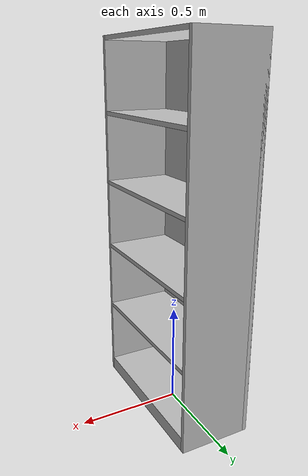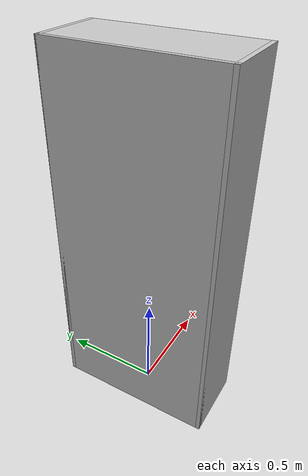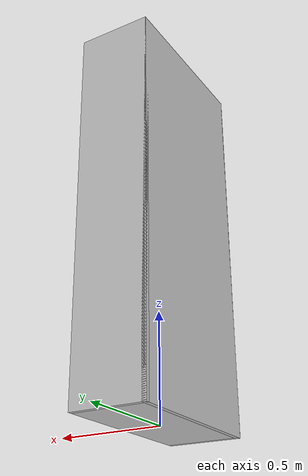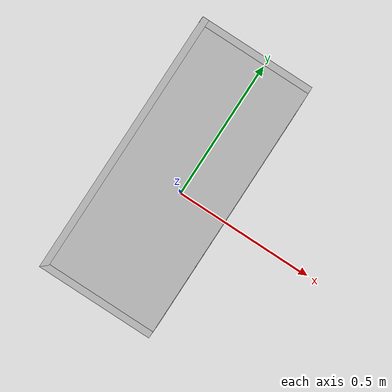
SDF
<?xml version="1.0"?>
<sdf version="1.6">
  <model name="rwc2016/bookcase1">
    <link name="1_link">
      <collision name="1_col">
        <geometry>
          <box>
            <size>0.35 0.02 1.798</size>
          </box>
        </geometry>
      </collision>
      <visual name="1_vis">
        <geometry>
          <box>
            <size>0.35 0.02 1.798</size>
          </box>
        </geometry>
        <material>
          <ambient>0.75 0.75 0.75 1</ambient>
        </material>
      </visual>
      <pose>0 -0.39 0.899 0 0 0</pose>
    </link>
    <link name="2_link">
      <collision name="2_col">
        <geometry>
          <box>
            <size>0.35 0.02 1.798</size>
          </box>
        </geometry>
      </collision>
      <visual name="2_vis">
        <geometry>
          <box>
            <size>0.35 0.02 1.798</size>
          </box>
        </geometry>
        <material>
          <ambient>0.75 0.75 0.75 1</ambient>
        </material>
      </visual>
      <pose>0 0.39 0.899 0 0 0</pose>
    </link>
    <link name="3_link">
      <collision name="3_col">
        <geometry>
          <box>
            <size>0.02 0.8 1.798</size>
          </box>
        </geometry>
      </collision>
      <visual name="3_vis">
        <geometry>
          <box>
            <size>0.02 0.8 1.798</size>
          </box>
        </geometry>
        <material>
          <ambient>0.75 0.75 0.75 1</ambient>
        </material>
      </visual>
      <pose>-0.165 0 0.899 0 0 0</pose>
    </link>
    <link name="4_link">
      <collision name="4_col">
        <geometry>
          <box>
            <size>0.33 0.76 0.02</size>
          </box>
        </geometry>
      </collision>
      <visual name="4_vis">
        <geometry>
          <box>
            <size>0.33 0.76 0.02</size>
          </box>
        </geometry>
        <material>
          <ambient>0.75 0.75 0.75 1</ambient>
        </material>
      </visual>
      <pose>0.01 0 1.788 0 0 0</pose>
    </link>
    <link name="5_link">
      <collision name="5_col">
        <geometry>
          <box>
            <size>0.33 0.76 0.069</size>
          </box>
        </geometry>
      </collision>
      <visual name="5_vis">
        <geometry>
          <box>
            <size>0.33 0.76 0.069</size>
          </box>
        </geometry>
        <material>
          <ambient>0.75 0.75 0.75 1</ambient>
        </material>
      </visual>
      <pose>0.01 0 0.0345 0 0 0</pose>
    </link>
    <link name="6_link">
      <collision name="6_col">
        <geometry>
          <box>
            <size>0.33 0.76 0.02</size>
          </box>
        </geometry>
      </collision>
      <visual name="6_vis">
        <geometry>
          <box>
            <size>0.33 0.76 0.02</size>
          </box>
        </geometry>
        <material>
          <ambient>0.75 0.75 0.75 1</ambient>
        </material>
      </visual>
      <pose>0.01 0 0.408 0 0 0</pose>
    </link>
    <link name="7_link">
      <collision name="7_col">
        <geometry>
          <box>
            <size>0.33 0.76 0.02</size>
          </box>
        </geometry>
      </collision>
      <visual name="7_vis">
        <geometry>
          <box>
            <size>0.33 0.76 0.02</size>
          </box>
        </geometry>
        <material>
          <ambient>0.75 0.75 0.75 1</ambient>
        </material>
      </visual>
      <pose>0.01 0 0.755 0 0 0</pose>
    </link>
    <link name="8_link">
      <collision name="8_col">
        <geometry>
          <box>
            <size>0.33 0.76 0.02</size>
          </box>
        </geometry>
      </collision>
      <visual name="8_vis">
        <geometry>
          <box>
            <size>0.33 0.76 0.02</size>
          </box>
        </geometry>
        <material>
          <ambient>0.75 0.75 0.75 1</ambient>
        </material>
      </visual>
      <pose>0.01 0 1.097 0 0 0</pose>
    </link>
    <link name="9_link">
      <collision name="9_col">
        <geometry>
          <box>
            <size>0.33 0.76 0.02</size>
          </box>
        </geometry>
      </collision>
      <visual name="9_vis">
        <geometry>
          <box>
            <size>0.33 0.76 0.02</size>
          </box>
        </geometry>
        <material>
          <ambient>0.75 0.75 0.75 1</ambient>
        </material>
      </visual>
      <pose>0.01 0 1.443 0 0 0</pose>
    </link>
    <link name="in_front_of">
      <virtual_volume name="in_front_of_vv">
        <geometry>
          <box>
            <size>0.2 0.6 0.01</size>
          </box>
        </geometry>
        <pose>0.675 0.0 0.005 0 0 0</pose>
      </virtual_volume>
    </link>
    <link name="shelf1">
      <virtual_volume name="shelf1_vv">
        <geometry>
          <box>
            <size>0.27 0.7 0.25</size>
          </box>
        </geometry>
        <pose>0.01 0.0 0.214 0 0 0</pose>
      </virtual_volume>
    </link>
    <link name="shelf2">
      <virtual_volume name="shelf2_vv">
        <geometry>
          <box>
            <size>0.27 0.7 0.25</size>
          </box>
        </geometry>
        <pose>0.01 0.0 0.563 0 0 0</pose>
      </virtual_volume>
    </link>
    <link name="shelf3">
      <virtual_volume name="shelf3_vv">
        <geometry>
          <box>
            <size>0.27 0.7 0.23</size>
          </box>
        </geometry>
        <pose>0.01 0.0 0.92 0 0 0</pose>
      </virtual_volume>
    </link>
    <link name="shelf4">
      <virtual_volume name="shelf4_vv">
        <geometry>
          <box>
            <size>0.27 0.7 0.24</size>
          </box>
        </geometry>
        <pose>0.01 0.0 1.257 0 0 0</pose>
      </virtual_volume>
    </link>
    <link name="shelf5">
      <virtual_volume name="shelf5_vv">
        <geometry>
          <box>
            <size>0.27 0.7 0.25</size>
          </box>
        </geometry>
        <pose>0.01 0.0 1.598 0 0 0</pose>
      </virtual_volume>
    </link>
    <static>true</static>
  </model>
</sdf>
